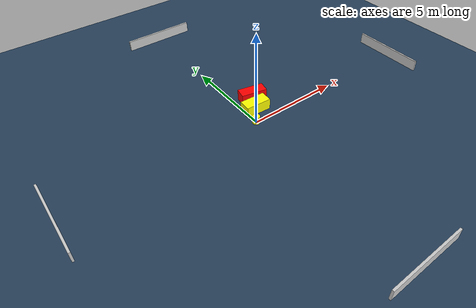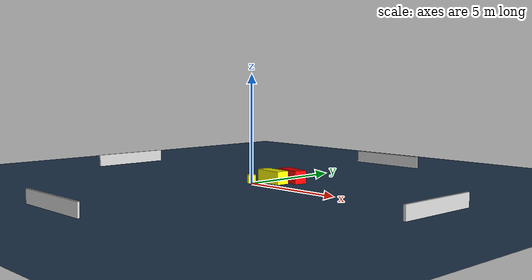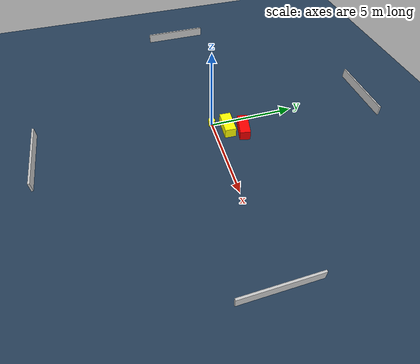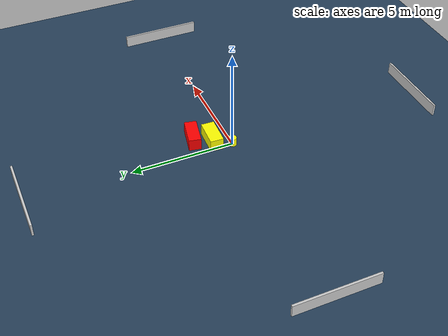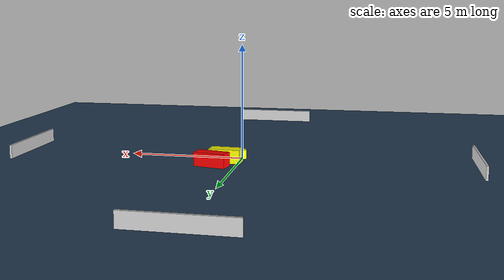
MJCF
<?xml version="1.0" ?>
<mujoco model="generated_environment">
  <option timestep="0.01" integrator="RK4" cone="elliptic"/>
  <default>
    <geom density="1"/>
  </default>
  <asset>
    <texture builtin="gradient" height="3072" name="skybox" rgb1="0.3 0.5 0.7" rgb2="0 0 0" type="skybox" width="512"/>
    <texture builtin="checker" height="300" name="groundplane" rgb1="0.2 0.3 0.4" rgb2="0.1 0.2 0.3" type="2d" width="300"/>
    <material name="groundplane" reflectance="0.2" texrepeat="5 5" texture="groundplane"/>
  </asset>
  <worldbody>
    <light dir="0 0 -1" directional="true" pos="0 0 1.5"/>
    <geom condim="3" friction="0.5 0.005 0.001" material="groundplane" name="floor" pos="0 0 0" size="0 0 0.05" type="plane"/>
    <body name="walls">
      <geom name="wall_1" condim="4" pos="-10.0 0.0 0.3" rgba="0.800000011920929 0.800000011920929 0.800000011920929 1.0" size="0.05 2.0 0.3" type="box"/>
      <geom name="wall_2" condim="4" pos="10.0 0.0 0.3" rgba="0.800000011920929 0.800000011920929 0.800000011920929 1.0" size="0.05 2.0 0.3" type="box"/>
      <geom name="wall_3" condim="4" pos="0.0 -10.0 0.3" rgba="0.800000011920929 0.800000011920929 0.800000011920929 1.0" size="2.0 0.05 0.3" type="box"/>
      <geom name="wall_4" condim="4" pos="0.0 10.0 0.3" rgba="0.800000011920929 0.800000011920929 0.800000011920929 1.0" size="2.0 0.05 0.3" type="box"/>
    </body>
    <body name="robot">
      <joint name="joint_x" type="slide" pos="0 0 0" axis="1 0 0"/>
      <joint name="joint_y" type="slide" pos="0 0 0" axis="0 1 0"/>
      <geom name="robot" type="cylinder" pos="0.0 0.0 0.2" size="0.2 0.2 0.0" mass="5.0" friction="1.0 0.005 0.0001" condim="4" rgba="1.0 1.0 0.0 1.0"/>
    </body>
    <body name="obstacle_1_movable">
      <geom name="obstacle_1_movable" condim="4" pos="0.5727924422133424 0.7992313487334117 0.3" euler="0 0 177.18136740179307" friction="0.0 0.005 0.001" rgba="1.0 1.0 0.0 1.0" size="0.6840337952902996 0.32424938908728074 0.3" type="box" mass="0.1"/>
      <joint type="free"/>
    </body>
    <body name="obstacle_2_static">
      <geom name="obstacle_2_static" condim="4" pos="1.0014372213515843 1.6299526659584682 0.3" euler="0 0 168.11015350012406" friction="0.0 0.005 0.001" rgba="1.0 0.0 0.0 1.0" size="0.6975176213936383 0.29908619575964357 0.3" type="box"/>
    </body>
  </worldbody>
  <actuator>
    <motor name="actuator_x" joint="joint_x" gear="1" ctrlrange="-1 1"/>
    <motor name="actuator_y" joint="joint_y" gear="1" ctrlrange="-1 1"/>
  </actuator>
</mujoco>
